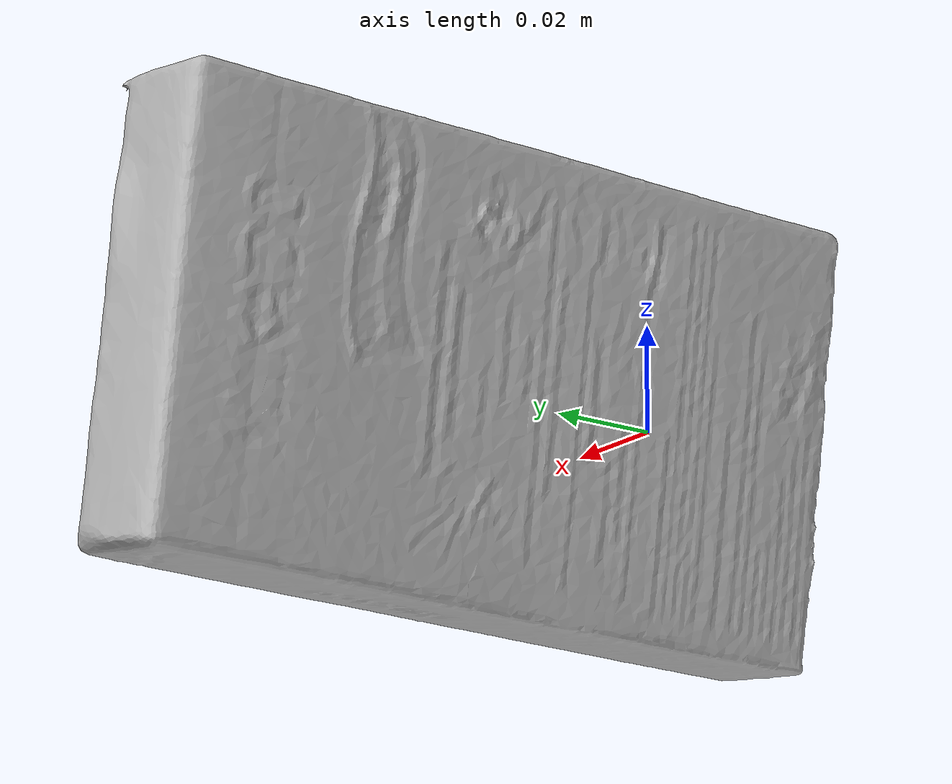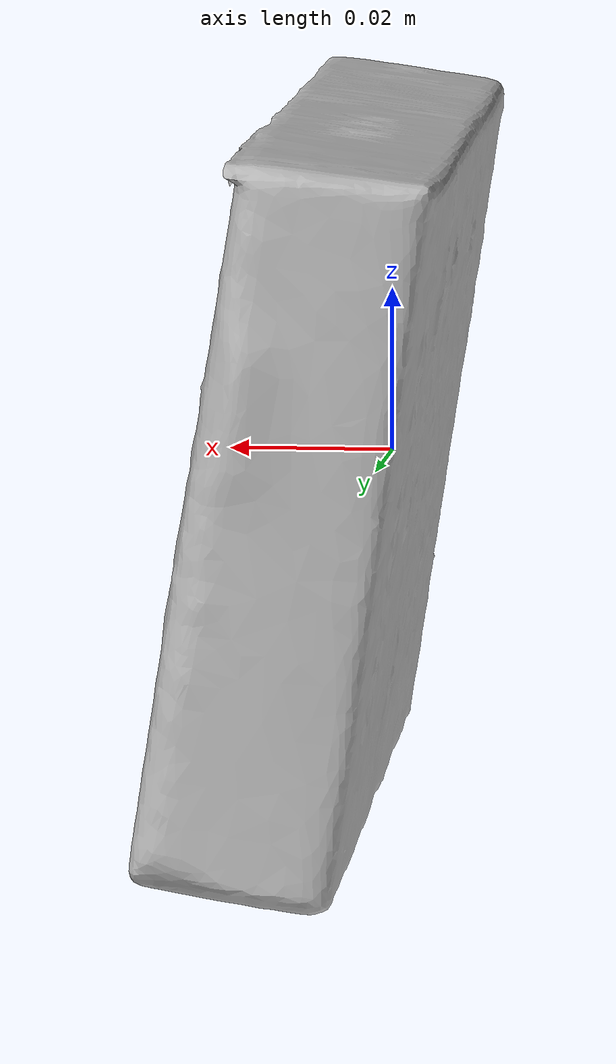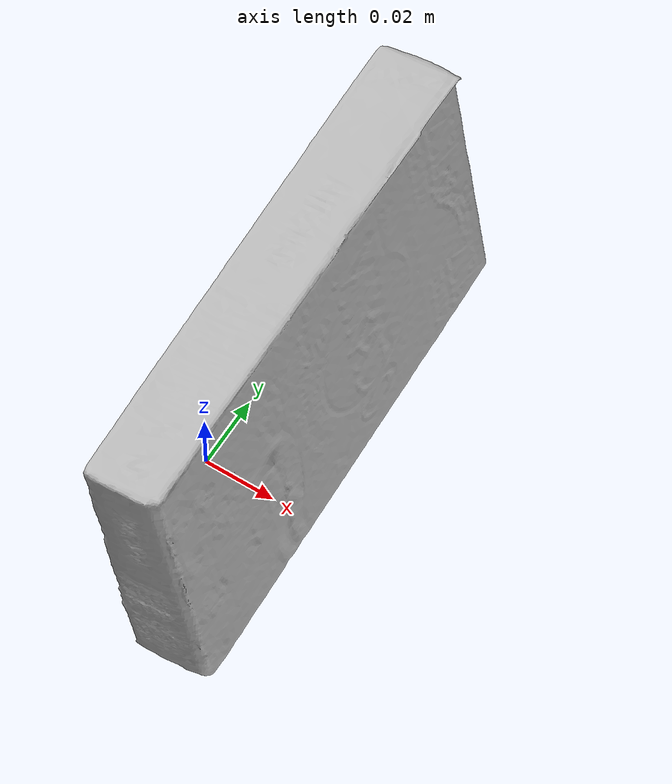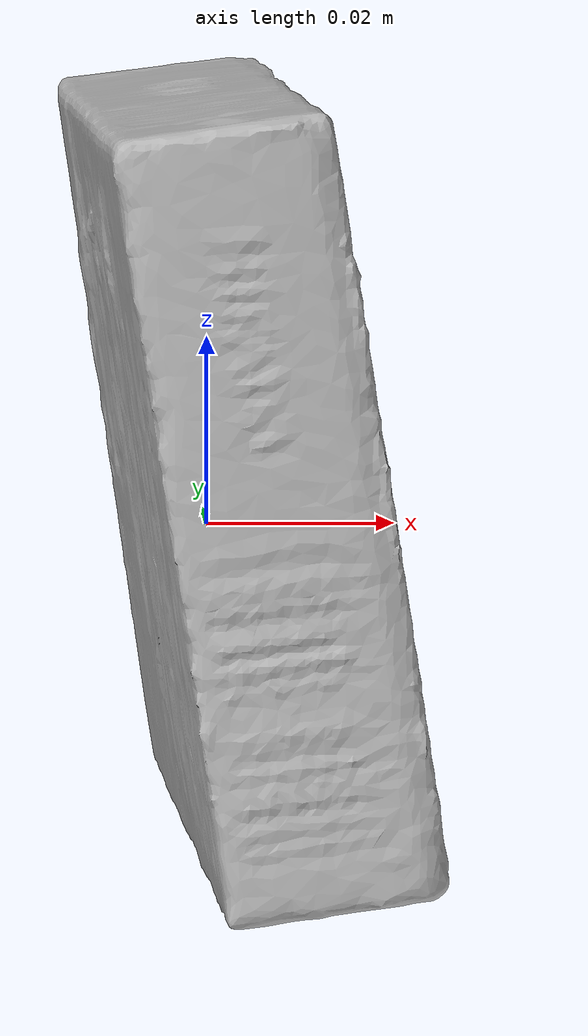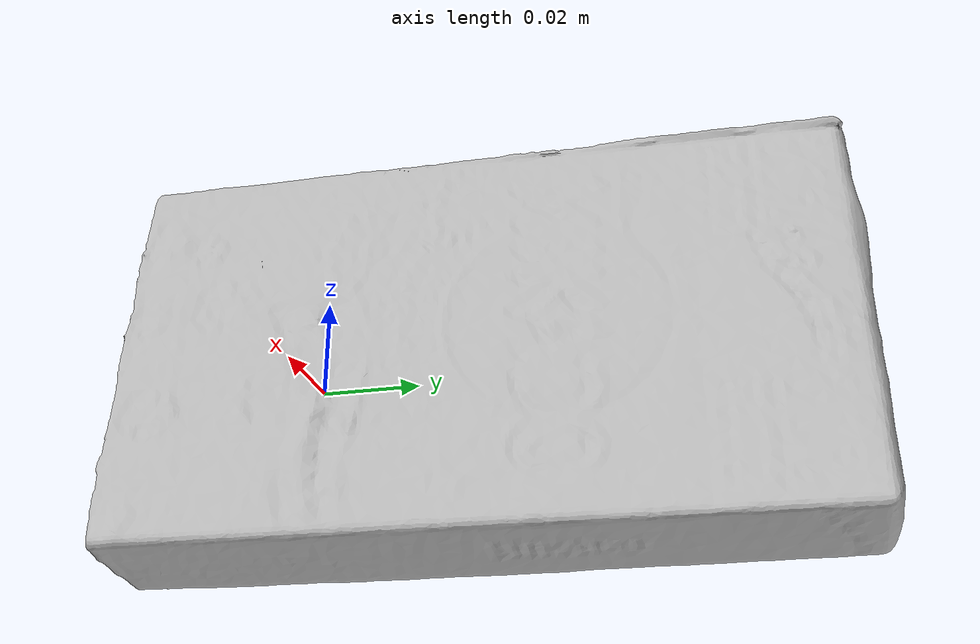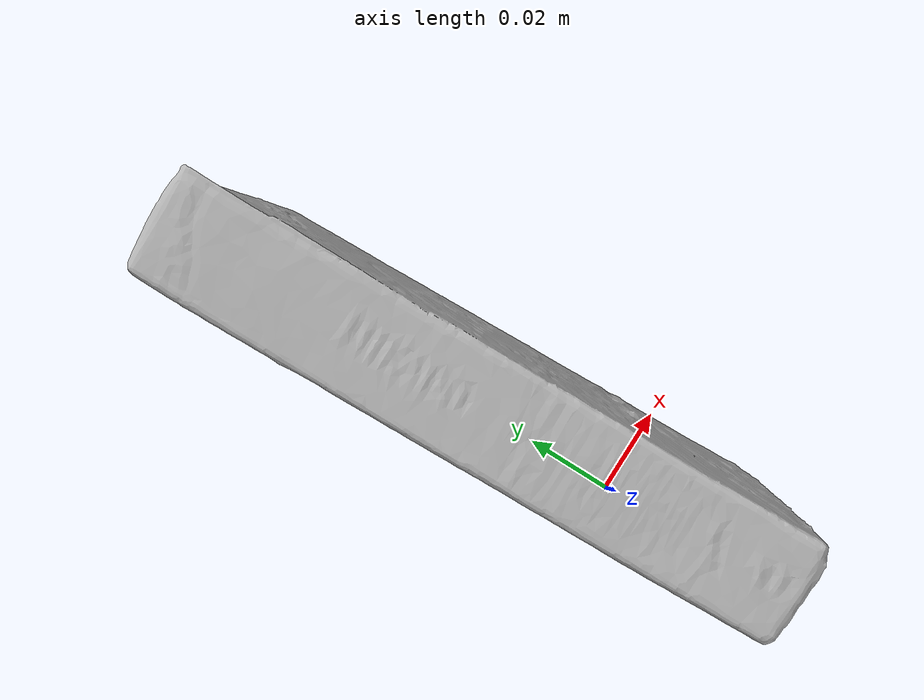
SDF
<?xml version='1.0'?>
<sdf version="1.4">
  <model name="ChocSticks2">
    <static>false</static>
    <link name="link">
      <inertial>
        <pose>0.004381733861849192 0.03514596839402245 0.0036077078845572993 1.5613454060286927 0.14835072506235497 -3.106355655723401</pose>
        <mass>0.029289053395073792</mass>
        <inertia>
          <ixx>6.727131175838542e-05</ixx>
          <ixy>-1.2753966823658265e-21</ixy>
          <ixz>3.9012864021628253e-22</ixz>
          <iyy>5.210162478461304e-05</iyy>
          <iyz>9.84771506736852e-22</iyz>
          <izz>1.8043947778131557e-05</izz>
        </inertia>
      </inertial>
      <collision name="collision">
        <geometry>
          <mesh>
            <!-- Use a downsampled mesh for collisions -->
            <uri>model:///ChocSticks2/ChocSticks2_250_collision.obj</uri>
	        </mesh>
        </geometry>
        <surface>
      </surface>
      </collision>
      <visual name="visual">
        <geometry>
          <mesh>
            <uri>model:///ChocSticks2/ChocSticks2_25k_tex.obj</uri>
	        </mesh>
        </geometry>
        <material>
          <script>
            <uri>model:///ChocSticks2/ChocSticks2.material</uri>
            <name>ChocSticks2</name>
          </script>
        </material>
      </visual>
    </link>
  </model>
</sdf>
